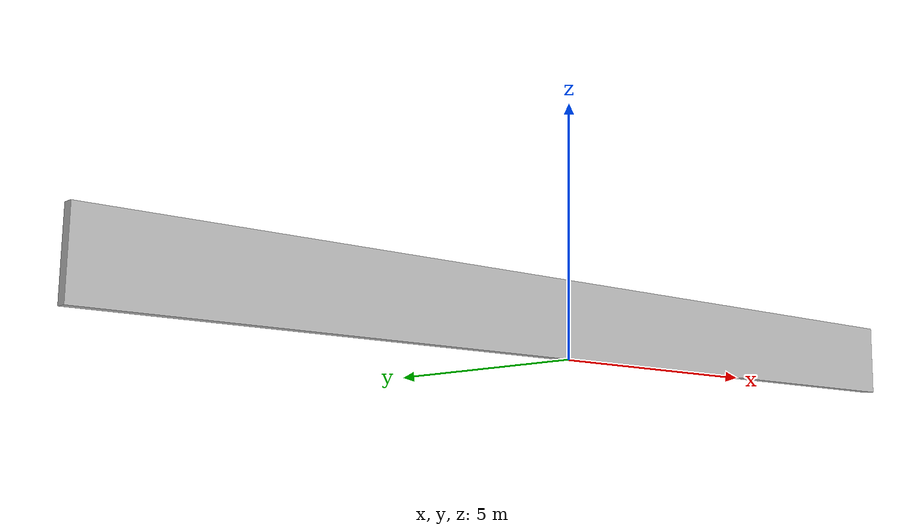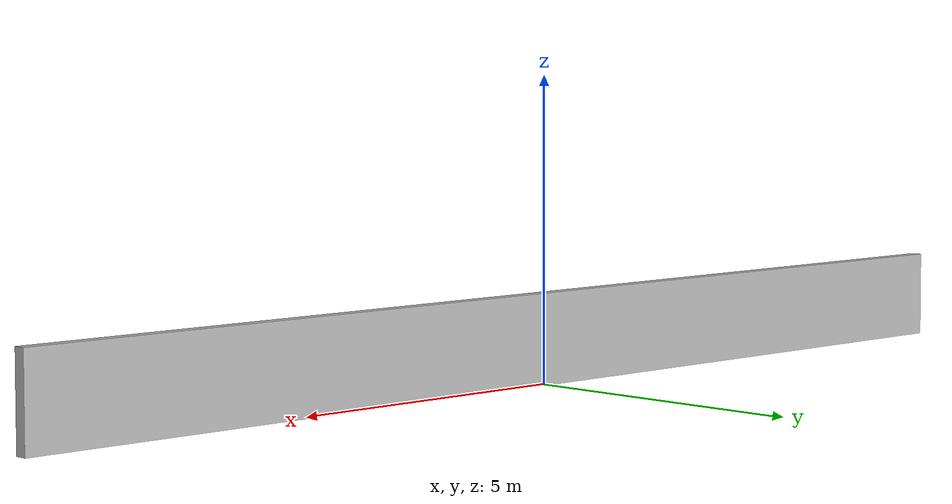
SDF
<?xml version="1.0"?>
<sdf version="1.6">
  <model name="parede_20m">
    <static>true</static>

    <pose>0 0 0.75 0 0 0</pose>

    <link name="link">
      <collision name="collision">
        <geometry>
          <box>
            <size>20 0.2 1.5</size>
          </box>
        </geometry>
      </collision>
      <visual name="visual">
        <geometry>
          <box>
            <size>20 0.2 1.5</size>
          </box>
        </geometry>
      </visual>
    </link>
  </model>
</sdf>
